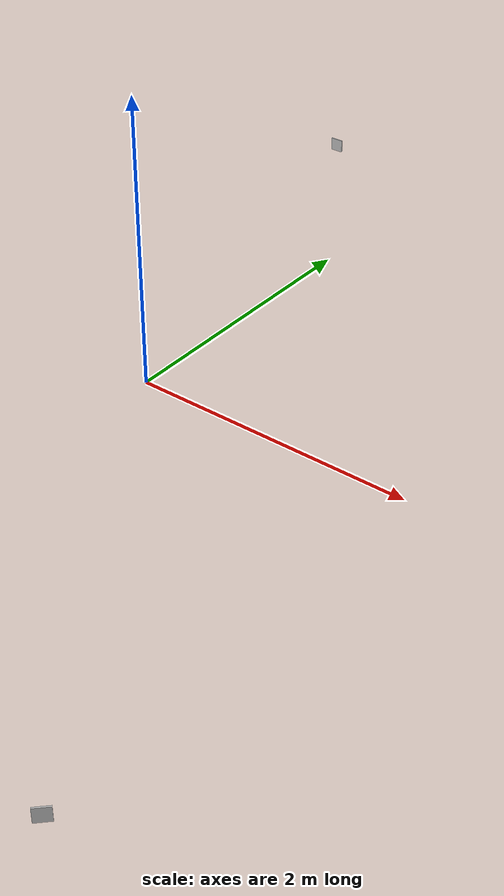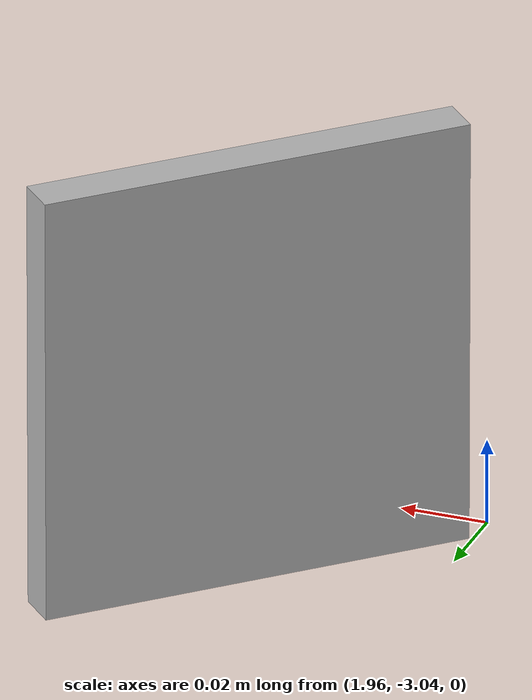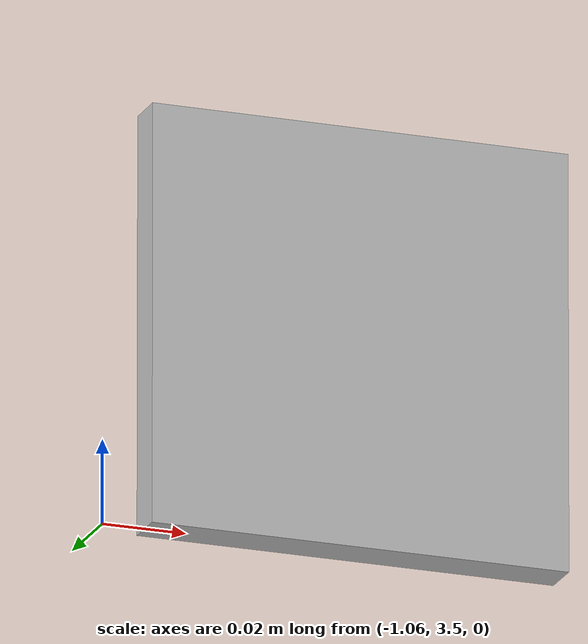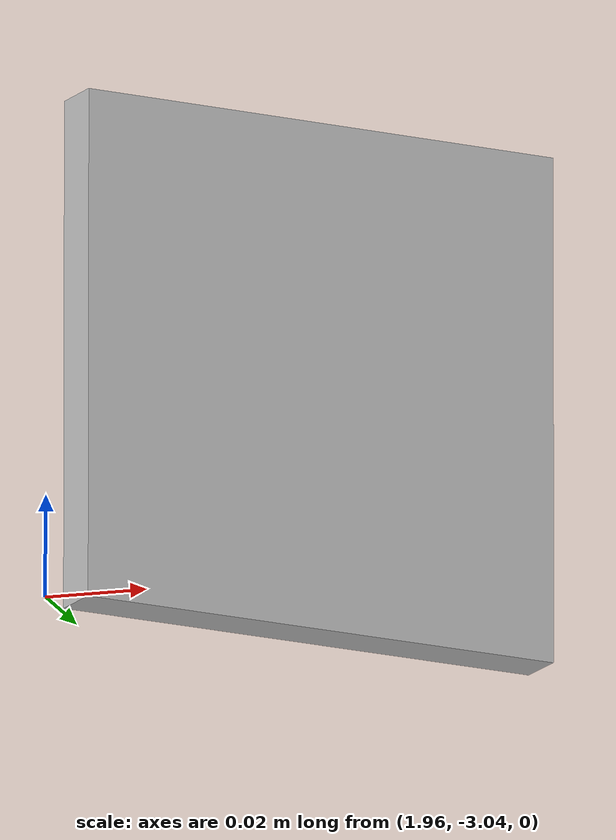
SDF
<?xml version="1.0"?>
<sdf version="1.4">
	<model name="apriltags">
		<pose>0 0 0 0 0 0</pose>
		<static>true</static>
		<link name="a_0">
			<pose>2 -3 0.05 0 0 2.35</pose>
			<collision name="a_0_collision">
				<geometry>
					<box>
						<size>0.01 0.1 0.1</size>
					</box>
				</geometry>
				<surface>
					<friction>
						<ode>
							<mu>100</mu>
							<mu2>50</mu2>
						</ode>
					</friction>
				</surface>
			</collision>
			<visual name="a_0_visual">
				<cast_shadows>false</cast_shadows>
				<geometry>
					<box>
						<size>0.01 0.1 0.1</size>
					</box>
				</geometry>
				<material>
					<script>
						<uri>model://apriltags/materials/scripts</uri>
						<uri>model://apriltags/materials/textures</uri>
						<name>a_0/Image</name>
					</script>
				</material>
			</visual>
		</link>
		<link name="a_1">
			<pose>-1 3.5 0.05 0 0 1.5708</pose>
			<collision name="a_1_collision">
				<geometry>
					<box>
						<size>0.01 0.1 0.1</size>
					</box>
				</geometry>
				<surface>
					<friction>
						<ode>
							<mu>100</mu>
							<mu2>50</mu2>
						</ode>
					</friction>
				</surface>
			</collision>
			<visual name="a_1_visual">
				<cast_shadows>false</cast_shadows>
				<geometry>
					<box>
						<size>0.01 0.1 0.1</size>
					</box>
				</geometry>
				<material>
					<script>
						<uri>model://apriltags/materials/scripts</uri>
						<uri>model://apriltags/materials/textures</uri>
						<name>a_1/Image</name>
					</script>
				</material>
			</visual>
		</link>
	</model>

</sdf>
